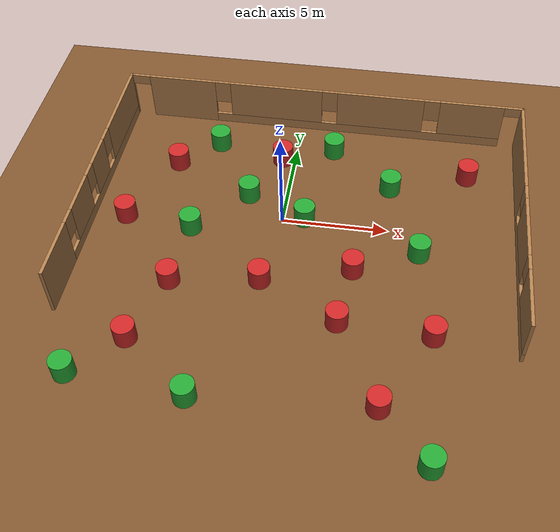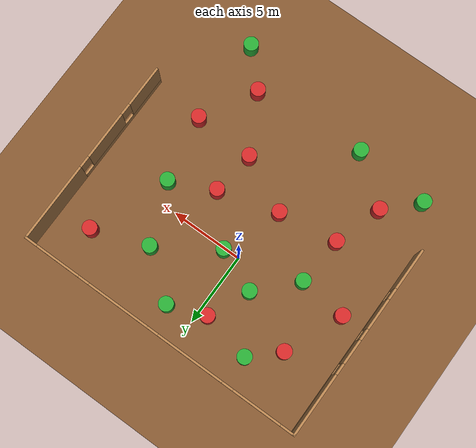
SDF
<sdf version="1.7">
 <world name="default">
  <light name="sun" type="directional">
   <pose>0 0 10 0 -0 0</pose>
   <diffuse>0.8 0.8 0.8 1</diffuse>
   <specular>0.2 0.2 0.2 1</specular>
   <attenuation>
    <range>1000</range>
    <constant>0.9</constant>
    <linear>0.01</linear>
    <quadratic>0.001</quadratic>
   </attenuation>
   <direction>-0.5 0.1 -0.9</direction>
   <spot><inner_angle>0</inner_angle><outer_angle>0</outer_angle><falloff>0</falloff></spot>
  </light>
  <model name="ground_plane">
   <static>1</static>
   <link name="link">
    <collision name="collision">
     <geometry><plane><normal>0 0 1</normal><size>100 100</size></plane></geometry>
     <surface>
      <contact><collide_bitmask>65535</collide_bitmask></contact>
      <friction><ode><mu>100</mu><mu2>50</mu2></ode></friction>
     </surface>
    </collision>
    <visual name="visual">
     <cast_shadows>0</cast_shadows>
     <geometry><plane><normal>0 0 1</normal><size>100 100</size></plane></geometry>
     <material>
      <script><uri>file://media/materials/scripts/gazebo.material</uri><name>Gazebo/Brown</name></script>
     </material>
    </visual>
   </link>
  </model>
  <gravity>0 0 -9.8</gravity>
  <magnetic_field>6e-06 2.3e-05 -4.2e-05</magnetic_field>
  <atmosphere type="adiabatic"/>
  <physics type="ode">
   <max_step_size>0.001</max_step_size>
   <real_time_factor>1</real_time_factor>
   <real_time_update_rate>1000</real_time_update_rate>
  </physics>
  <scene><ambient>0.4 0.4 0.4 1</ambient><background>0.7 0.7 0.7 1</background><shadows>1</shadows></scene>
  <spherical_coordinates>
   <surface_model>EARTH_WGS84</surface_model>
   <latitude_deg>0</latitude_deg>
   <longitude_deg>0</longitude_deg>
   <elevation>0</elevation>
   <heading_deg>0</heading_deg>
  </spherical_coordinates>
  <model name="depth_cam_test">
   <pose>1.03052 0.122767 0 0 -0 0</pose>
   <link name="Wall_10">
    <pose>10.05 0.081009 0 0 -0 -1.5708</pose>
    <visual name="Wall_10_Visual_0">
     <pose>-3.97269 0 1.25 0 -0 0</pose>
     <geometry><box><size>5.522 0.15 2.5</size></box></geometry>
     <material>
      <script><uri>file://media/materials/scripts/gazebo.material</uri><name>Gazebo/Wood</name></script>
      <ambient>1 1 1 1</ambient>
     </material>
     <meta><layer>0</layer></meta>
    </visual>
    <collision name="Wall_10_Collision_0">
     <geometry><box><size>5.522 0.15 2.5</size></box></geometry>
     <pose>-3.97269 0 1.25 0 -0 0</pose>
    </collision>
    <visual name="Wall_10_Visual_1">
     <pose>2.761 0 0.25 0 -0 0</pose>
     <geometry><box><size>7.94539 0.15 0.5</size></box></geometry>
     <material>
      <script><uri>file://media/materials/scripts/gazebo.material</uri><name>Gazebo/Wood</name></script>
      <ambient>1 1 1 1</ambient>
     </material>
     <meta><layer>0</layer></meta>
    </visual>
    <collision name="Wall_10_Collision_1">
     <geometry><box><size>7.94539 0.15 0.5</size></box></geometry>
     <pose>2.761 0 0.25 0 -0 0</pose>
    </collision>
    <visual name="Wall_10_Visual_2">
     <pose>1.28859 0 1.5 0 -0 0</pose>
     <geometry><box><size>3.40057 0.15 2</size></box></geometry>
     <material>
      <script><uri>file://media/materials/scripts/gazebo.material</uri><name>Gazebo/Wood</name></script>
      <ambient>1 1 1 1</ambient>
     </material>
     <meta><layer>0</layer></meta>
    </visual>
    <collision name="Wall_10_Collision_2">
     <geometry><box><size>3.40057 0.15 2</size></box></geometry>
     <pose>1.28859 0 1.5 0 -0 0</pose>
    </collision>
    <visual name="Wall_10_Visual_3">
     <pose>5.26129 0 1.5 0 -0 0</pose>
     <geometry><box><size>2.94482 0.15 2</size></box></geometry>
     <material>
      <script><uri>file://media/materials/scripts/gazebo.material</uri><name>Gazebo/Wood</name></script>
      <ambient>1 1 1 1</ambient>
     </material>
     <meta><layer>0</layer></meta>
    </visual>
    <collision name="Wall_10_Collision_3">
     <geometry><box><size>2.94482 0.15 2</size></box></geometry>
     <pose>5.26129 0 1.5 0 -0 0</pose>
    </collision>
    <visual name="Wall_10_Visual_4">
     <pose>-0.811693 0 1.9 0 -0 0</pose>
     <geometry><box><size>0.8 0.15 1.2</size></box></geometry>
     <material>
      <script><uri>file://media/materials/scripts/gazebo.material</uri><name>Gazebo/Wood</name></script>
      <ambient>1 1 1 1</ambient>
     </material>
     <meta><layer>0</layer></meta>
    </visual>
    <collision name="Wall_10_Collision_4">
     <geometry><box><size>0.8 0.15 1.2</size></box></geometry>
     <pose>-0.811693 0 1.9 0 -0 0</pose>
    </collision>
    <visual name="Wall_10_Visual_5">
     <pose>3.38888 0 1.9 0 -0 0</pose>
     <geometry><box><size>0.8 0.15 1.2</size></box></geometry>
     <material>
      <script><uri>file://media/materials/scripts/gazebo.material</uri><name>Gazebo/Wood</name></script>
      <ambient>1 1 1 1</ambient>
     </material>
     <meta><layer>0</layer></meta>
    </visual>
    <collision name="Wall_10_Collision_5">
     <geometry><box><size>0.8 0.15 1.2</size></box></geometry>
     <pose>3.38888 0 1.9 0 -0 0</pose>
    </collision>
   </link>
   <link name="Wall_8">
    <pose>-10.05 -0.017391 0 0 -0 1.5708</pose>
    <visual name="Wall_8_Visual_0">
     <pose>-5.36581 0 1.25 0 -0 0</pose>
     <geometry><box><size>2.93257 0.15 2.5</size></box></geometry>
     <material>
      <script><uri>file://media/materials/scripts/gazebo.material</uri><name>Gazebo/Wood</name></script>
      <ambient>1 1 1 1</ambient>
     </material>
     <meta><layer>0</layer></meta>
    </visual>
    <collision name="Wall_8_Collision_0">
     <geometry><box><size>2.93257 0.15 2.5</size></box></geometry>
     <pose>-5.36581 0 1.25 0 -0 0</pose>
    </collision>
    <visual name="Wall_8_Visual_1">
     <pose>1.46629 0 0.25 0 -0 0</pose>
     <geometry><box><size>10.7316 0.15 0.5</size></box></geometry>
     <material>
      <script><uri>file://media/materials/scripts/gazebo.material</uri><name>Gazebo/Wood</name></script>
      <ambient>1 1 1 1</ambient>
     </material>
     <meta><layer>0</layer></meta>
    </visual>
    <collision name="Wall_8_Collision_1">
     <geometry><box><size>10.7316 0.15 0.5</size></box></geometry>
     <pose>1.46629 0 0.25 0 -0 0</pose>
    </collision>
    <visual name="Wall_8_Visual_2">
     <pose>-1.99016 0 1.5 0 -0 0</pose>
     <geometry><box><size>2.21873 0.15 2</size></box></geometry>
     <material>
      <script><uri>file://media/materials/scripts/gazebo.material</uri><name>Gazebo/Wood</name></script>
      <ambient>1 1 1 1</ambient>
     </material>
     <meta><layer>0</layer></meta>
    </visual>
    <collision name="Wall_8_Collision_2">
     <geometry><box><size>2.21873 0.15 2</size></box></geometry>
     <pose>-1.99016 0 1.5 0 -0 0</pose>
    </collision>
    <visual name="Wall_8_Visual_3">
     <pose>0.78419 0 1.5 0 -0 0</pose>
     <geometry><box><size>1.72998 0.15 2</size></box></geometry>
     <material>
      <script><uri>file://media/materials/scripts/gazebo.material</uri><name>Gazebo/Wood</name></script>
      <ambient>1 1 1 1</ambient>
     </material>
     <meta><layer>0</layer></meta>
    </visual>
    <collision name="Wall_8_Collision_3">
     <geometry><box><size>1.72998 0.15 2</size></box></geometry>
     <pose>0.78419 0 1.5 0 -0 0</pose>
    </collision>
    <visual name="Wall_8_Visual_4">
     <pose>4.64064 0 1.5 0 -0 0</pose>
     <geometry><box><size>4.38291 0.15 2</size></box></geometry>
     <material>
      <script><uri>file://media/materials/scripts/gazebo.material</uri><name>Gazebo/Wood</name></script>
      <ambient>1 1 1 1</ambient>
     </material>
     <meta><layer>0</layer></meta>
    </visual>
    <collision name="Wall_8_Collision_4">
     <geometry><box><size>4.38291 0.15 2</size></box></geometry>
     <pose>4.64064 0 1.5 0 -0 0</pose>
    </collision>
    <visual name="Wall_8_Visual_5">
     <pose>-3.49953 0 1.9 0 -0 0</pose>
     <geometry><box><size>0.8 0.15 1.2</size></box></geometry>
     <material>
      <script><uri>file://media/materials/scripts/gazebo.material</uri><name>Gazebo/Wood</name></script>
      <ambient>1 1 1 1</ambient>
     </material>
     <meta><layer>0</layer></meta>
    </visual>
    <collision name="Wall_8_Collision_5">
     <geometry><box><size>0.8 0.15 1.2</size></box></geometry>
     <pose>-3.49953 0 1.9 0 -0 0</pose>
    </collision>
    <visual name="Wall_8_Visual_6">
     <pose>-0.4808 0 1.9 0 -0 0</pose>
     <geometry><box><size>0.8 0.15 1.2</size></box></geometry>
     <material>
      <script><uri>file://media/materials/scripts/gazebo.material</uri><name>Gazebo/Wood</name></script>
      <ambient>1 1 1 1</ambient>
     </material>
     <meta><layer>0</layer></meta>
    </visual>
    <collision name="Wall_8_Collision_6">
     <geometry><box><size>0.8 0.15 1.2</size></box></geometry>
     <pose>-0.4808 0 1.9 0 -0 0</pose>
    </collision>
    <visual name="Wall_8_Visual_7">
     <pose>2.04918 0 1.9 0 -0 0</pose>
     <geometry><box><size>0.8 0.15 1.2</size></box></geometry>
     <material>
      <script><uri>file://media/materials/scripts/gazebo.material</uri><name>Gazebo/Wood</name></script>
      <ambient>1 1 1 1</ambient>
     </material>
     <meta><layer>0</layer></meta>
    </visual>
    <collision name="Wall_8_Collision_7">
     <geometry><box><size>0.8 0.15 1.2</size></box></geometry>
     <pose>2.04918 0 1.9 0 -0 0</pose>
    </collision>
   </link>
   <link name="Wall_9">
    <pose>0 6.77449 0 0 -0 0</pose>
    <visual name="Wall_9_Visual_0">
     <pose>-10.0459 0 1.25 0 -0 0</pose>
     <geometry><box><size>0.15818 0.15 2.5</size></box></geometry>
     <material>
      <script><uri>file://media/materials/scripts/gazebo.material</uri><name>Gazebo/Wood</name></script>
      <ambient>1 1 1 1</ambient>
     </material>
     <meta><layer>0</layer></meta>
    </visual>
    <collision name="Wall_9_Collision_0">
     <geometry><box><size>0.15818 0.15 2.5</size></box></geometry>
     <pose>-10.0459 0 1.25 0 -0 0</pose>
    </collision>
    <visual name="Wall_9_Visual_1">
     <pose>-7.3353 0 1.25 0 -0 0</pose>
     <geometry><box><size>3.46304 0.15 2.5</size></box></geometry>
     <material>
      <script><uri>file://media/materials/scripts/gazebo.material</uri><name>Gazebo/Wood</name></script>
      <ambient>1 1 1 1</ambient>
     </material>
     <meta><layer>0</layer></meta>
    </visual>
    <collision name="Wall_9_Collision_1">
     <geometry><box><size>3.46304 0.15 2.5</size></box></geometry>
     <pose>-7.3353 0 1.25 0 -0 0</pose>
    </collision>
    <visual name="Wall_9_Visual_2">
     <pose>10.0943 0 1.25 0 -0 0</pose>
     <geometry><box><size>0.061385 0.15 2.5</size></box></geometry>
     <material>
      <script><uri>file://media/materials/scripts/gazebo.material</uri><name>Gazebo/Wood</name></script>
      <ambient>1 1 1 1</ambient>
     </material>
     <meta><layer>0</layer></meta>
    </visual>
    <collision name="Wall_9_Collision_2">
     <geometry><box><size>0.061385 0.15 2.5</size></box></geometry>
     <pose>10.0943 0 1.25 0 -0 0</pose>
    </collision>
    <visual name="Wall_9_Visual_3">
     <pose>1.77992 0 0.25 0 -0 0</pose>
     <geometry><box><size>14.7674 0.15 0.5</size></box></geometry>
     <material>
      <script><uri>file://media/materials/scripts/gazebo.material</uri><name>Gazebo/Wood</name></script>
      <ambient>1 1 1 1</ambient>
     </material>
     <meta><layer>0</layer></meta>
    </visual>
    <collision name="Wall_9_Collision_3">
     <geometry><box><size>14.7674 0.15 0.5</size></box></geometry>
     <pose>1.77992 0 0.25 0 -0 0</pose>
    </collision>
    <visual name="Wall_9_Visual_4">
     <pose>-2.42117 0 1.5 0 -0 0</pose>
     <geometry><box><size>4.76522 0.15 2</size></box></geometry>
     <material>
      <script><uri>file://media/materials/scripts/gazebo.material</uri><name>Gazebo/Wood</name></script>
      <ambient>1 1 1 1</ambient>
     </material>
     <meta><layer>0</layer></meta>
    </visual>
    <collision name="Wall_9_Collision_4">
     <geometry><box><size>4.76522 0.15 2</size></box></geometry>
     <pose>-2.42117 0 1.5 0 -0 0</pose>
    </collision>
    <visual name="Wall_9_Visual_5">
     <pose>2.97014 0 1.5 0 -0 0</pose>
     <geometry><box><size>4.41739 0.15 2</size></box></geometry>
     <material>
      <script><uri>file://media/materials/scripts/gazebo.material</uri><name>Gazebo/Wood</name></script>
      <ambient>1 1 1 1</ambient>
     </material>
     <meta><layer>0</layer></meta>
    </visual>
    <collision name="Wall_9_Collision_5">
     <geometry><box><size>4.41739 0.15 2</size></box></geometry>
     <pose>2.97014 0 1.5 0 -0 0</pose>
    </collision>
    <visual name="Wall_9_Visual_6">
     <pose>7.57122 0 1.5 0 -0 0</pose>
     <geometry><box><size>3.18478 0.15 2</size></box></geometry>
     <material>
      <script><uri>file://media/materials/scripts/gazebo.material</uri><name>Gazebo/Wood</name></script>
      <ambient>1 1 1 1</ambient>
     </material>
     <meta><layer>0</layer></meta>
    </visual>
    <collision name="Wall_9_Collision_6">
     <geometry><box><size>3.18478 0.15 2</size></box></geometry>
     <pose>7.57122 0 1.5 0 -0 0</pose>
    </collision>
    <visual name="Wall_9_Visual_7">
     <pose>-5.20378 0 1.9 0 -0 0</pose>
     <geometry><box><size>0.8 0.15 1.2</size></box></geometry>
     <material>
      <script><uri>file://media/materials/scripts/gazebo.material</uri><name>Gazebo/Wood</name></script>
      <ambient>1 1 1 1</ambient>
     </material>
     <meta><layer>0</layer></meta>
    </visual>
    <collision name="Wall_9_Collision_7">
     <geometry><box><size>0.8 0.15 1.2</size></box></geometry>
     <pose>-5.20378 0 1.9 0 -0 0</pose>
    </collision>
    <visual name="Wall_9_Visual_8">
     <pose>0.36144 0 1.9 0 -0 0</pose>
     <geometry><box><size>0.8 0.15 1.2</size></box></geometry>
     <material>
      <script><uri>file://media/materials/scripts/gazebo.material</uri><name>Gazebo/Wood</name></script>
      <ambient>1 1 1 1</ambient>
     </material>
     <meta><layer>0</layer></meta>
    </visual>
    <collision name="Wall_9_Collision_8">
     <geometry><box><size>0.8 0.15 1.2</size></box></geometry>
     <pose>0.36144 0 1.9 0 -0 0</pose>
    </collision>
    <visual name="Wall_9_Visual_9">
     <pose>5.57883 0 1.9 0 -0 0</pose>
     <geometry><box><size>0.8 0.15 1.2</size></box></geometry>
     <material>
      <script><uri>file://media/materials/scripts/gazebo.material</uri><name>Gazebo/Wood</name></script>
      <ambient>1 1 1 1</ambient>
     </material>
     <meta><layer>0</layer></meta>
    </visual>
    <collision name="Wall_9_Collision_9">
     <geometry><box><size>0.8 0.15 1.2</size></box></geometry>
     <pose>5.57883 0 1.9 0 -0 0</pose>
    </collision>
    <visual name="Wall_9_Visual_10">
     <pose>-9.51682 0 2.25 0 -0 0</pose>
     <geometry><box><size>0.9 0.15 0.5</size></box></geometry>
     <material>
      <script><uri>file://media/materials/scripts/gazebo.material</uri><name>Gazebo/Wood</name></script>
      <ambient>1 1 1 1</ambient>
     </material>
     <meta><layer>0</layer></meta>
    </visual>
    <collision name="Wall_9_Collision_10">
     <geometry><box><size>0.9 0.15 0.5</size></box></geometry>
     <pose>-9.51682 0 2.25 0 -0 0</pose>
    </collision>
    <visual name="Wall_9_Visual_11">
     <pose>9.61361 0 2.25 0 -0 0</pose>
     <geometry><box><size>0.9 0.15 0.5</size></box></geometry>
     <material>
      <script><uri>file://media/materials/scripts/gazebo.material</uri><name>Gazebo/Wood</name></script>
      <ambient>1 1 1 1</ambient>
     </material>
     <meta><layer>0</layer></meta>
    </visual>
    <collision name="Wall_9_Collision_11">
     <geometry><box><size>0.9 0.15 0.5</size></box></geometry>
     <pose>9.61361 0 2.25 0 -0 0</pose>
    </collision>
   </link>
   <static>1</static>
  </model>
  <model name="unit_cylinder">
   <pose>-5.76549 3.14164 0.5 0 -0 0</pose>
   <link name="link">
    <inertial>
     <mass>1</mass>
     <inertia><ixx>0.145833</ixx><ixy>0</ixy><ixz>0</ixz><iyy>0.145833</iyy><iyz>0</iyz><izz>0.125</izz></inertia>
    </inertial>
    <collision name="collision">
     <geometry><cylinder><radius>0.5</radius><length>1</length></cylinder></geometry>
    </collision>
    <visual name="visual">
     <geometry><cylinder><radius>0.5</radius><length>1</length></cylinder></geometry>
     <material>
      <script><name>Gazebo/Red</name><uri>file://media/materials/scripts/gazebo.material</uri></script>
     </material>
    </visual>
   </link>
  </model>
  <model name="unit_cylinder_0">
   <pose>4.92348 2.7296 0.5 0 -0 0</pose>
   <link name="link">
    <inertial>
     <mass>1</mass>
     <inertia><ixx>0.145833</ixx><ixy>0</ixy><ixz>0</ixz><iyy>0.145833</iyy><iyz>0</iyz><izz>0.125</izz></inertia>
    </inertial>
    <collision name="collision">
     <geometry><cylinder><radius>0.5</radius><length>1</length></cylinder></geometry>
    </collision>
    <visual name="visual">
     <geometry><cylinder><radius>0.5</radius><length>1</length></cylinder></geometry>
     <material>
      <script><name>Gazebo/Green</name><uri>file://media/materials/scripts/gazebo.material</uri></script>
     </material>
    </visual>
   </link>
  </model>
  <model name="unit_cylinder_1">
   <pose>-4.43338 -4.422 0.5 0 -0 0</pose>
   <link name="link">
    <inertial>
     <mass>1</mass>
     <inertia><ixx>0.145833</ixx><ixy>0</ixy><ixz>0</ixz><iyy>0.145833</iyy><iyz>0</iyz><izz>0.125</izz></inertia>
    </inertial>
    <collision name="collision">
     <geometry><cylinder><radius>0.5</radius><length>1</length></cylinder></geometry>
    </collision>
    <visual name="visual">
     <geometry><cylinder><radius>0.5</radius><length>1</length></cylinder></geometry>
     <material>
      <script><name>Gazebo/Red</name><uri>file://media/materials/scripts/gazebo.material</uri></script>
     </material>
    </visual>
   </link>
  </model>
  <model name="unit_cylinder_2">
   <pose>-1.83249 1.35751 0.5 0 -0 0</pose>
   <link name="link">
    <inertial>
     <mass>1</mass>
     <inertia><ixx>0.145833</ixx><ixy>0</ixy><ixz>0</ixz><iyy>0.145833</iyy><iyz>0</iyz><izz>0.125</izz></inertia>
    </inertial>
    <collision name="collision">
     <geometry><cylinder><radius>0.5</radius><length>1</length></cylinder></geometry>
    </collision>
    <visual name="visual">
     <geometry><cylinder><radius>0.5</radius><length>1</length></cylinder></geometry>
     <material>
      <script><name>Gazebo/Green</name><uri>file://media/materials/scripts/gazebo.material</uri></script>
     </material>
    </visual>
   </link>
  </model>
  <model name="unit_cylinder_3">
   <pose>3.27306 -5.69959 0.5 0 -0 0</pose>
   <link name="link">
    <inertial>
     <mass>1</mass>
     <inertia><ixx>0.145833</ixx><ixy>0</ixy><ixz>0</ixz><iyy>0.145833</iyy><iyz>0</iyz><izz>0.125</izz></inertia>
    </inertial>
    <collision name="collision">
     <geometry><cylinder><radius>0.5</radius><length>1</length></cylinder></geometry>
    </collision>
    <visual name="visual">
     <geometry><cylinder><radius>0.5</radius><length>1</length></cylinder></geometry>
     <material>
      <script><name>Gazebo/Red</name><uri>file://media/materials/scripts/gazebo.material</uri></script>
     </material>
    </visual>
   </link>
  </model>
  <model name="unit_cylinder_4">
   <pose>1.04307 0.154296 0.5 0 -0 0</pose>
   <link name="link">
    <inertial>
     <mass>1</mass>
     <inertia><ixx>0.145833</ixx><ixy>0</ixy><ixz>0</ixz><iyy>0.145833</iyy><iyz>0</iyz><izz>0.125</izz></inertia>
    </inertial>
    <collision name="collision">
     <geometry><cylinder><radius>0.5</radius><length>1</length></cylinder></geometry>
    </collision>
    <visual name="visual">
     <geometry><cylinder><radius>0.5</radius><length>1</length></cylinder></geometry>
     <material>
      <script><name>Gazebo/Green</name><uri>file://media/materials/scripts/gazebo.material</uri></script>
     </material>
    </visual>
   </link>
  </model>
  <model name="unit_cylinder_5">
   <pose>7.42816 -5.88284 0.5 0 -0 0</pose>
   <link name="link">
    <inertial>
     <mass>1</mass>
     <inertia><ixx>0.145833</ixx><ixy>0</ixy><ixz>0</ixz><iyy>0.145833</iyy><iyz>0</iyz><izz>0.125</izz></inertia>
    </inertial>
    <collision name="collision">
     <geometry><cylinder><radius>0.5</radius><length>1</length></cylinder></geometry>
    </collision>
    <visual name="visual">
     <geometry><cylinder><radius>0.5</radius><length>1</length></cylinder></geometry>
     <material>
      <script><name>Gazebo/Red</name><uri>file://media/materials/scripts/gazebo.material</uri></script>
     </material>
    </visual>
   </link>
  </model>
  <model name="unit_cylinder_6">
   <pose>6.55438 -1.33542 0.5 0 -0 0</pose>
   <link name="link">
    <inertial>
     <mass>1</mass>
     <inertia><ixx>0.145833</ixx><ixy>0</ixy><ixz>0</ixz><iyy>0.145833</iyy><iyz>0</iyz><izz>0.125</izz></inertia>
    </inertial>
    <collision name="collision">
     <geometry><cylinder><radius>0.5</radius><length>1</length></cylinder></geometry>
    </collision>
    <visual name="visual">
     <geometry><cylinder><radius>0.5</radius><length>1</length></cylinder></geometry>
     <material>
      <script><name>Gazebo/Green</name><uri>file://media/materials/scripts/gazebo.material</uri></script>
     </material>
    </visual>
   </link>
  </model>
  <model name="unit_cylinder_7">
   <pose>8.64985 4.043 0.5 0 -0 0</pose>
   <link name="link">
    <inertial>
     <mass>1</mass>
     <inertia><ixx>0.145833</ixx><ixy>0</ixy><ixz>0</ixz><iyy>0.145833</iyy><iyz>0</iyz><izz>0.125</izz></inertia>
    </inertial>
    <collision name="collision">
     <geometry><cylinder><radius>0.5</radius><length>1</length></cylinder></geometry>
    </collision>
    <visual name="visual">
     <geometry><cylinder><radius>0.5</radius><length>1</length></cylinder></geometry>
     <material>
      <script><name>Gazebo/Red</name><uri>file://media/materials/scripts/gazebo.material</uri></script>
     </material>
    </visual>
   </link>
  </model>
  <model name="unit_cylinder_8">
   <pose>-3.96631 4.8483 0.5 0 -0 0</pose>
   <link name="link">
    <inertial>
     <mass>1</mass>
     <inertia><ixx>0.145833</ixx><ixy>0</ixy><ixz>0</ixz><iyy>0.145833</iyy><iyz>0</iyz><izz>0.125</izz></inertia>
    </inertial>
    <collision name="collision">
     <geometry><cylinder><radius>0.5</radius><length>1</length></cylinder></geometry>
    </collision>
    <visual name="visual">
     <geometry><cylinder><radius>0.5</radius><length>1</length></cylinder></geometry>
     <material>
      <script><name>Gazebo/Green</name><uri>file://media/materials/scripts/gazebo.material</uri></script>
     </material>
    </visual>
   </link>
  </model>
  <model name="unit_cylinder_9">
   <pose>-0.421462 -3.84098 0.5 0 -0 0</pose>
   <link name="link">
    <inertial>
     <mass>1</mass>
     <inertia><ixx>0.145833</ixx><ixy>0</ixy><ixz>0</ixz><iyy>0.145833</iyy><iyz>0</iyz><izz>0.125</izz></inertia>
    </inertial>
    <collision name="collision">
     <geometry><cylinder><radius>0.5</radius><length>1</length></cylinder></geometry>
    </collision>
    <visual name="visual">
     <geometry><cylinder><radius>0.5</radius><length>1</length></cylinder></geometry>
     <material>
      <script><name>Gazebo/Red</name><uri>file://media/materials/scripts/gazebo.material</uri></script>
     </material>
    </visual>
   </link>
  </model>
  <model name="unit_cylinder_10">
   <pose>1.88125 5.07078 0.5 0 -0 0</pose>
   <link name="link">
    <inertial>
     <mass>1</mass>
     <inertia><ixx>0.145833</ixx><ixy>0</ixy><ixz>0</ixz><iyy>0.145833</iyy><iyz>0</iyz><izz>0.125</izz></inertia>
    </inertial>
    <collision name="collision">
     <geometry><cylinder><radius>0.5</radius><length>1</length></cylinder></geometry>
    </collision>
    <visual name="visual">
     <geometry><cylinder><radius>0.5</radius><length>1</length></cylinder></geometry>
     <material>
      <script><name>Gazebo/Green</name><uri>file://media/materials/scripts/gazebo.material</uri></script>
     </material>
    </visual>
   </link>
  </model>
  <model name="unit_cylinder_11">
   <pose>5.38965 -9.60565 0.5 0 -0 0</pose>
   <link name="link">
    <inertial>
     <mass>1</mass>
     <inertia><ixx>0.145833</ixx><ixy>0</ixy><ixz>0</ixz><iyy>0.145833</iyy><iyz>0</iyz><izz>0.125</izz></inertia>
    </inertial>
    <collision name="collision">
     <geometry><cylinder><radius>0.5</radius><length>1</length></cylinder></geometry>
    </collision>
    <visual name="visual">
     <geometry><cylinder><radius>0.5</radius><length>1</length></cylinder></geometry>
     <material>
      <script><name>Gazebo/Red</name><uri>file://media/materials/scripts/gazebo.material</uri></script>
     </material>
    </visual>
   </link>
  </model>
  <model name="unit_cylinder_12">
   <pose>7.56581 -11.8652 0.5 0 -0 0</pose>
   <link name="link">
    <inertial>
     <mass>1</mass>
     <inertia><ixx>0.145833</ixx><ixy>0</ixy><ixz>0</ixz><iyy>0.145833</iyy><iyz>0</iyz><izz>0.125</izz></inertia>
    </inertial>
    <collision name="collision">
     <geometry><cylinder><radius>0.5</radius><length>1</length></cylinder></geometry>
    </collision>
    <visual name="visual">
     <geometry><cylinder><radius>0.5</radius><length>1</length></cylinder></geometry>
     <material>
      <script><name>Gazebo/Green</name><uri>file://media/materials/scripts/gazebo.material</uri></script>
     </material>
    </visual>
   </link>
  </model>
  <model name="unit_cylinder_13">
   <pose>-5.46875 -7.72138 0.5 0 -0 0</pose>
   <link name="link">
    <inertial>
     <mass>1</mass>
     <inertia><ixx>0.145833</ixx><ixy>0</ixy><ixz>0</ixz><iyy>0.145833</iyy><iyz>0</iyz><izz>0.125</izz></inertia>
    </inertial>
    <collision name="collision">
     <geometry><cylinder><radius>0.5</radius><length>1</length></cylinder></geometry>
    </collision>
    <visual name="visual">
     <geometry><cylinder><radius>0.5</radius><length>1</length></cylinder></geometry>
     <material>
      <script><name>Gazebo/Red</name><uri>file://media/materials/scripts/gazebo.material</uri></script>
     </material>
    </visual>
   </link>
  </model>
  <model name="unit_cylinder_14">
   <pose>-2.31992 -10.1937 0.5 0 -0 0</pose>
   <link name="link">
    <inertial>
     <mass>1</mass>
     <inertia><ixx>0.145833</ixx><ixy>0</ixy><ixz>0</ixz><iyy>0.145833</iyy><iyz>0</iyz><izz>0.125</izz></inertia>
    </inertial>
    <collision name="collision">
     <geometry><cylinder><radius>0.5</radius><length>1</length></cylinder></geometry>
    </collision>
    <visual name="visual">
     <geometry><cylinder><radius>0.5</radius><length>1</length></cylinder></geometry>
     <material>
      <script><name>Gazebo/Green</name><uri>file://media/materials/scripts/gazebo.material</uri></script>
     </material>
    </visual>
   </link>
  </model>
  <model name="unit_cylinder_15">
   <pose>-7.40808 -0.7847 0.5 0 -0 0</pose>
   <link name="link">
    <inertial>
     <mass>1</mass>
     <inertia><ixx>0.145833</ixx><ixy>0</ixy><ixz>0</ixz><iyy>0.145833</iyy><iyz>0</iyz><izz>0.125</izz></inertia>
    </inertial>
    <collision name="collision">
     <geometry><cylinder><radius>0.5</radius><length>1</length></cylinder></geometry>
    </collision>
    <visual name="visual">
     <geometry><cylinder><radius>0.5</radius><length>1</length></cylinder></geometry>
     <material>
      <script><name>Gazebo/Red</name><uri>file://media/materials/scripts/gazebo.material</uri></script>
     </material>
    </visual>
   </link>
  </model>
  <model name="unit_cylinder_16">
   <pose>-7.47097 -9.76217 0.5 0 -0 0</pose>
   <link name="link">
    <inertial>
     <mass>1</mass>
     <inertia><ixx>0.145833</ixx><ixy>0</ixy><ixz>0</ixz><iyy>0.145833</iyy><iyz>0</iyz><izz>0.125</izz></inertia>
    </inertial>
    <collision name="collision">
     <geometry><cylinder><radius>0.5</radius><length>1</length></cylinder></geometry>
    </collision>
    <visual name="visual">
     <geometry><cylinder><radius>0.5</radius><length>1</length></cylinder></geometry>
     <material>
      <script><name>Gazebo/Green</name><uri>file://media/materials/scripts/gazebo.material</uri></script>
     </material>
    </visual>
   </link>
  </model>
  <model name="unit_cylinder_17">
   <pose>3.64032 -2.70104 0.5 0 -0 0</pose>
   <link name="link">
    <inertial>
     <mass>1</mass>
     <inertia><ixx>0.145833</ixx><ixy>0</ixy><ixz>0</ixz><iyy>0.145833</iyy><iyz>0</iyz><izz>0.125</izz></inertia>
    </inertial>
    <collision name="collision">
     <geometry><cylinder><radius>0.5</radius><length>1</length></cylinder></geometry>
    </collision>
    <visual name="visual">
     <geometry><cylinder><radius>0.5</radius><length>1</length></cylinder></geometry>
     <material>
      <script><name>Gazebo/Red</name><uri>file://media/materials/scripts/gazebo.material</uri></script>
     </material>
    </visual>
   </link>
  </model>
  <model name="unit_cylinder_18">
   <pose>-4.18273 -1.13217 0.5 0 -0 0</pose>
   <link name="link">
    <inertial>
     <mass>1</mass>
     <inertia><ixx>0.145833</ixx><ixy>0</ixy><ixz>0</ixz><iyy>0.145833</iyy><iyz>0</iyz><izz>0.125</izz></inertia>
    </inertial>
    <collision name="collision">
     <geometry><cylinder><radius>0.5</radius><length>1</length></cylinder></geometry>
    </collision>
    <visual name="visual">
     <geometry><cylinder><radius>0.5</radius><length>1</length></cylinder></geometry>
     <material>
      <script><name>Gazebo/Green</name><uri>file://media/materials/scripts/gazebo.material</uri></script>
     </material>
    </visual>
   </link>
  </model>
  <model name="unit_cylinder_19">
   <pose>-0.619684 4.13778 0.5 0 -0 0</pose>
   <link name="link">
    <inertial>
     <mass>1</mass>
     <inertia><ixx>0.145833</ixx><ixy>0</ixy><ixz>0</ixz><iyy>0.145833</iyy><iyz>0</iyz><izz>0.125</izz></inertia>
    </inertial>
    <collision name="collision">
     <geometry><cylinder><radius>0.5</radius><length>1</length></cylinder></geometry>
    </collision>
    <visual name="visual">
     <geometry><cylinder><radius>0.5</radius><length>1</length></cylinder></geometry>
     <material>
      <script><name>Gazebo/Red</name><uri>file://media/materials/scripts/gazebo.material</uri></script>
     </material>
    </visual>
   </link>
  </model>
 </world>
</sdf>
